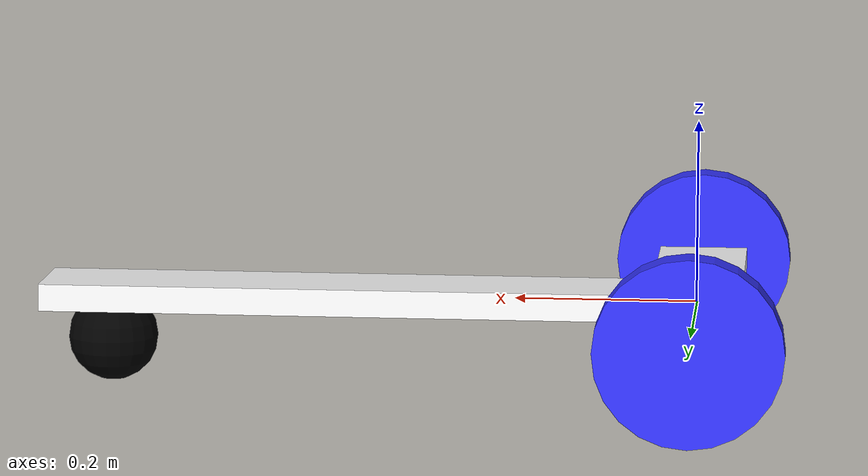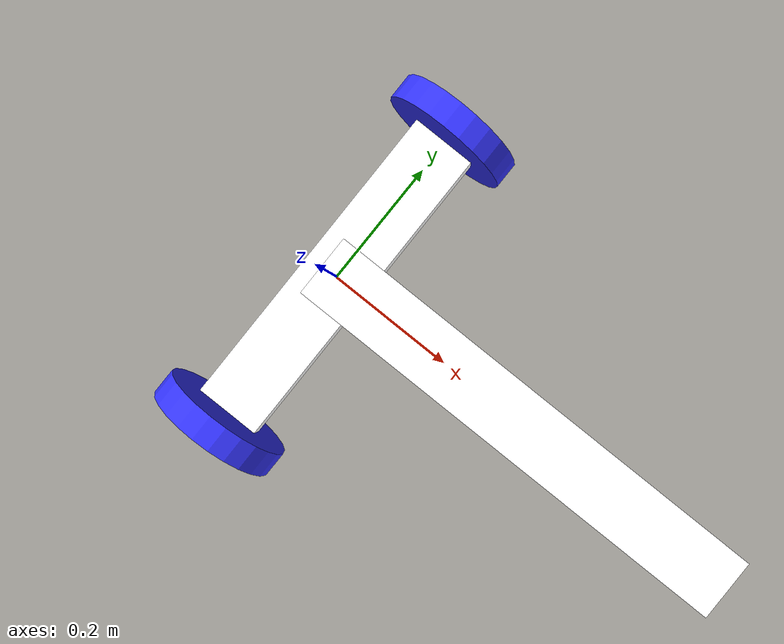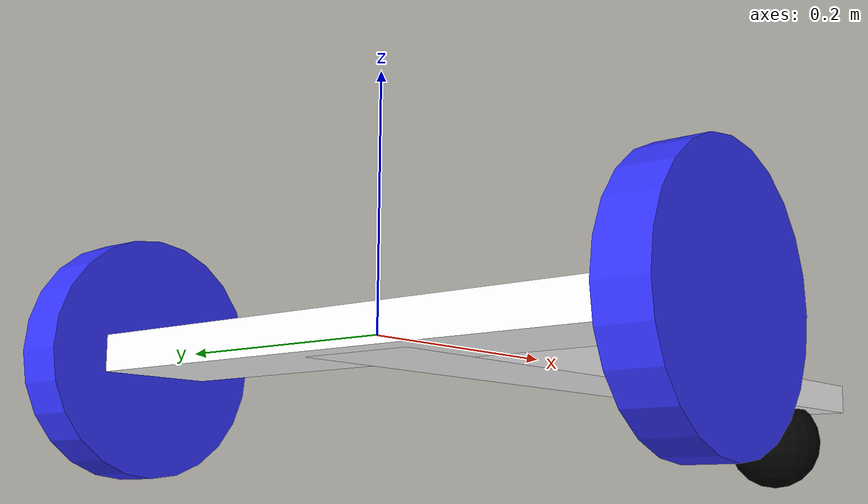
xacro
<?xml version="1.0"?>
<robot xmlns:xacro="http://www.ros.org/wiki/xacro"  >

    <xacro:include filename="inertial_macros.xacro" />

    <material name="white">
        <color rgba="1 1 1 1" />
    </material>

    <material name="orange">
        <color rgba="1 0.3 0.1 1" />
    </material>

    <material name="blue">
        <color rgba="0.2 0.2 1 1" />
    </material>

    <material name="black">
        <color rgba="0 0 0 1" />
    </material>

<!-- Base link-->
    <link name="base_link">

    </link>

    <joint name="chassis_joint" type="fixed">
        <parent link="base_link"/>
        <child link="chassis"/>
        <origin xyz="0.35 0 0"/>
    </joint>

<!-- chasis link-->
    <link name="chassis">
        <visual>
            <origin xyz="0.0 0.0 0.0" />
            <geometry>
                <box size="0.75 0.1 0.03"/>
            </geometry>
            <material name="white" />
        </visual>

        <visual>
            <origin xyz="-0.35 0.0 0.0" />
            <geometry>
                <box size="0.1 0.5 0.03"/>
            </geometry>
            <material name="white" />
        </visual>

        <collision>
            <origin xyz="0.0 0.0 0.0" />
            <geometry>
                <box size="0.75 0.1 0.03"/>
            </geometry>
        </collision>

        <collision>
            <origin xyz="-0.35 0.0 0.0" />
            <geometry>
                <box size="0.1 0.5 0.03"/>
            </geometry>
        </collision>

        <xacro:inertial_box mass="0.5" x="0.75" y="0.1" z="0.03" >
            <origin xyz="0.0 0.0 0.0" rpy="0 0 0"/>
        </xacro:inertial_box>

        <xacro:inertial_box mass="0.5" x="0.1" y="0.5" z="0.03" >
            <origin xyz="-0.35 0.0 0.0" rpy="0 0 0"/>
        </xacro:inertial_box>
    </link>

    <gazebo reference="chassis">
        <material>Gazebo/White</material>
    </gazebo>

<!-- right wheel link-->
    <joint name="right_wheel_joint" type="continuous">
        <parent link="base_link"/>
        <child link="right_wheel"/>
        <origin xyz="0.0 0.27 0.0" rpy="-${pi/2} 0.0 0.0"/>
        <axis xyz="0.0 0.0 -1"/>
    </joint>

    <link name="right_wheel">
        <visual>
            <geometry>
                <cylinder radius="0.1" length="0.04"/>
            </geometry>
            <material name="blue"/>

        </visual>

        <collision>
            <geometry>
                <cylinder radius="0.1" length="0.04"/>
            </geometry>
        </collision>
        <xacro:inertial_cylinder mass="0.1" length="0.04" radius="0.1" >
            <origin xyz="0.0 0.0 0.0" rpy="0.0 0.0 0.0"/>
        </xacro:inertial_cylinder>
    </link>

    <gazebo reference="right_wheel">
        <material>Gazebo/Blue</material>
        <surface>
            <friction>
                <ode>
                    <mu1>1.0</mu1>
                    <mu2>1.0</mu2>
                </ode>
            </friction>
        </surface>
    </gazebo>

<!-- left wheel link-->
    <joint name="left_wheel_joint" type="continuous">
        <parent link="base_link"/>
        <child link="left_wheel"/>
        <origin xyz="0 -0.27 0" rpy="${pi/2} 0 0"/>
        <axis xyz="0 0 1"/>
    </joint>

    <link name="left_wheel">
        <visual>
            <geometry>
                <cylinder radius="0.1" length="0.04"/>
            </geometry>
            <material name="blue"/>

        </visual>

        <collision>
            <geometry>
                <cylinder radius="0.1" length="0.04"/>
            </geometry>

        </collision>
        <xacro:inertial_cylinder mass="0.1" length="0.04" radius="0.1" >
            <origin xyz="0 0 0" rpy="0 0 0"/>
        </xacro:inertial_cylinder>
    </link>

    <gazebo reference="left_wheel">
        <material>Gazebo/Blue</material>
        <surface>
            <friction>
                <ode>
                    <mu>1</mu>
                    <mu2>1</mu2>
                </ode>
            </friction>
        </surface>
    </gazebo>

<!-- caster wheel link-->
    <joint name="caster_wheel_joint" type="fixed">
        <parent link="chassis"/>
        <child link="caster_wheel"/>
        <origin xyz="0.3 0 -0.05" />
    </joint>

    <link name="caster_wheel">
        <visual>
            <geometry>
                <sphere radius="0.05"/>
            </geometry>
            <material name="black"/>

        </visual>
        <collision>
            <geometry>
                <sphere radius="0.05"/>
            </geometry>

        </collision>
        <xacro:inertial_sphere mass="0.1" radius="0.05" >
            <origin xyz="0.0 0.0 0.0" rpy="0.0 0.0 0.0"/>
        </xacro:inertial_sphere>
    </link>

    <gazebo reference="caster_wheel">
        <material>Gazebo/Black</material>
        <surface>
            <friction>
                <ode>
                    <mu>0.0001</mu>
                    <mu2>0.0001</mu2>
                    <slip1>0.1</slip1>
                    <slip2>0.1</slip2>
                </ode>
            </friction>
        </surface>
    </gazebo>

</robot>
